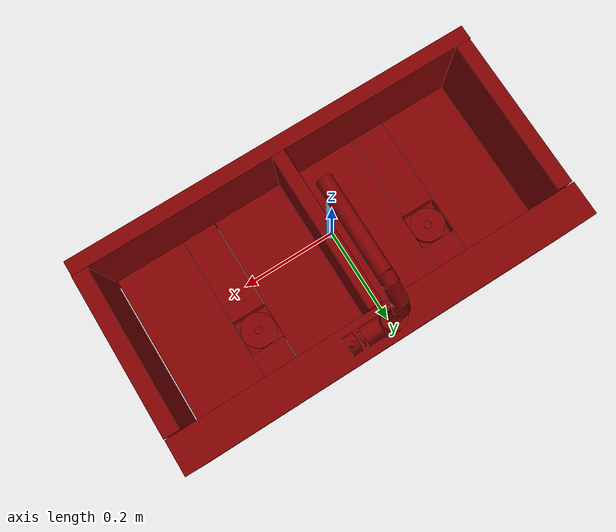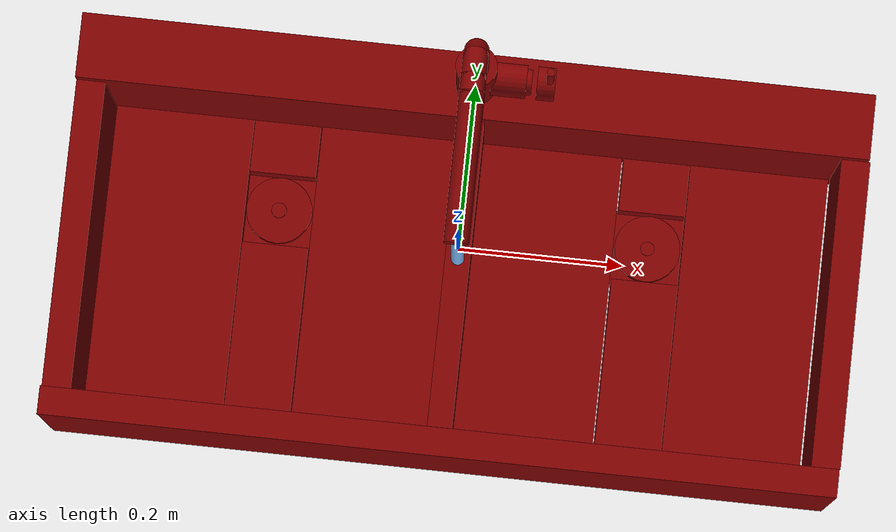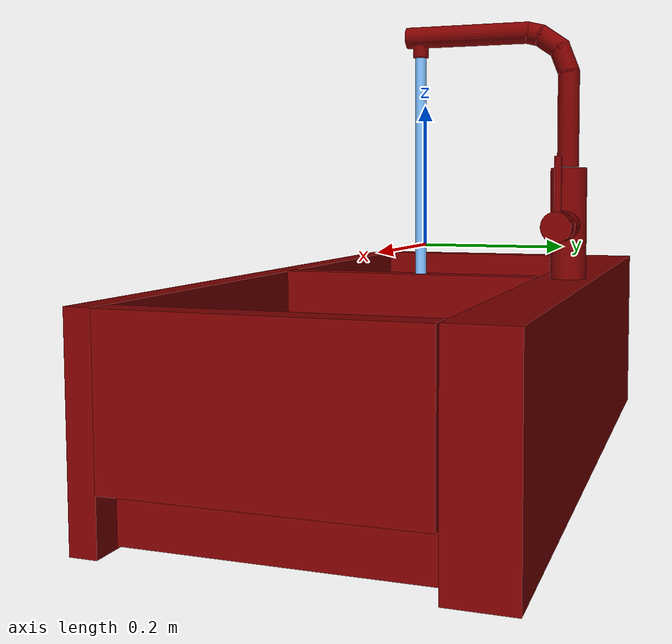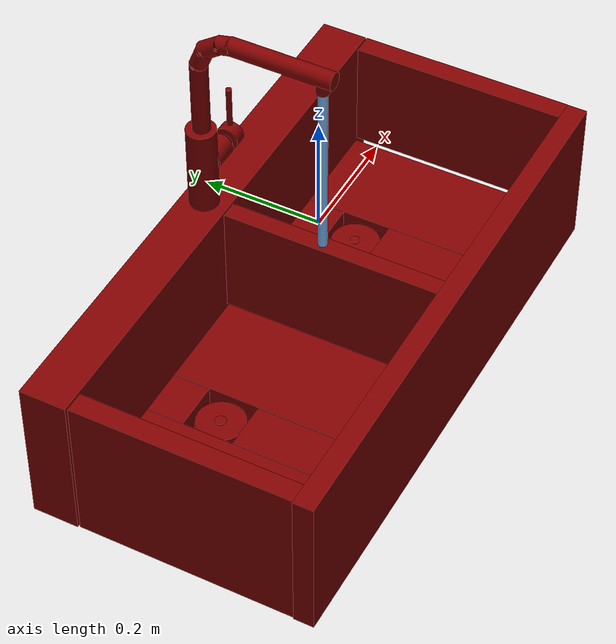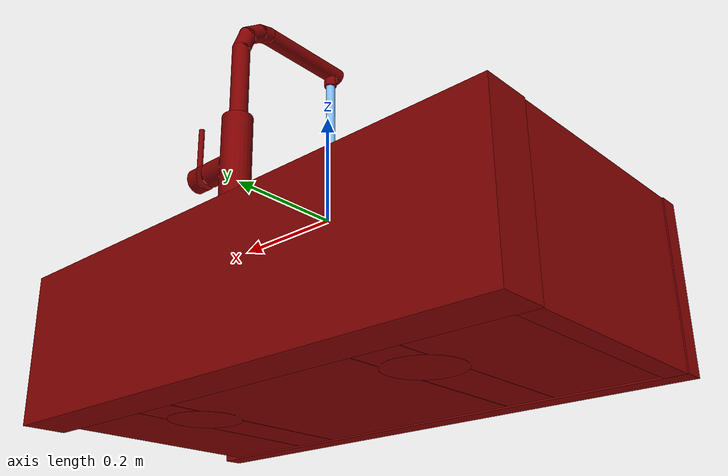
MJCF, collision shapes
<mujoco model="model">
  <compiler angle="radian"/>
  <asset>
    <mesh file="visuals/handle.obj" name="handle_vis"/>
    <mesh file="visuals/Body001.obj" name="Body001_vis"/>
    <mesh file="visuals/Funnel001.obj" name="Funnel001_vis"/>
    <mesh file="visuals/Funnel002.obj" name="Funnel002_vis"/>
    <mesh file="visuals/spout.obj" name="spout_vis"/>
    <texture file="visuals/T_BC001.png" name="Body001_material" type="2d"/>
    <material name="Body001_material" rgba="1 1 1 1.0" texture="Body001_material" shininess="0.4472135901451111" specular="0.3103448502657381"/>
    <texture file="visuals/T_BC001.png" name="handle_material" type="2d"/>
    <material name="handle_material" rgba="1 1 1 1.0" texture="handle_material" shininess="0.4472135901451111" specular="0.3103448502657381"/>
    <texture file="visuals/T_BC001.png" name="Funnel001_material" type="2d"/>
    <material name="Funnel001_material" rgba="1 1 1 1.0" texture="Funnel001_material" shininess="0.4472135901451111" specular="0.3103448502657381"/>
    <texture file="visuals/T_BC001.png" name="Funnel002_material" type="2d"/>
    <material name="Funnel002_material" rgba="1 1 1 1.0" texture="Funnel002_material" shininess="0.4472135901451111" specular="0.3103448502657381"/>
    <texture file="visuals/T_BC001.png" name="spout_material" type="2d"/>
    <material name="spout_material" rgba="1 1 1 1.0" texture="spout_material" shininess="0.4472135901451111" specular="0.3103448502657381"/>
  </asset>
  <default>
    <default class="visual">
      <geom conaffinity="0" contype="0" group="1" type="mesh"/>
    </default>
    <default class="collision">
      <geom group="0" rgba="0.5 0 0 0.5"/>
    </default>
    <default class="spawn">
      <geom group="0" rgba="1 1 1 0.5" contype="0" conaffinity="0"/>
      <site group="0" rgba="1 1 1 0.5"/>
    </default>
    <default class="region">
      <geom group="1" conaffinity="0" contype="0" rgba="0 1 0 0"/>
    </default>
  </default>
  <worldbody>
    <body>
      <body name="object">
        <geom mesh="Body001_vis" type="mesh" solimp="0.998 0.998 0.001" solref="0.001 1" density="100" friction="0.95 0.3 0.1" class="visual" material="Body001_material"/>
        <geom class="collision" type="box" pos="-0.4688240885734558 -0.025442225858569145 -0.17972242832183838" size="0.017692016437649727 0.18879583477973938 0.13597573339939117" quat="1.0 0.0 0.0 0.0"/>
        <geom class="collision" type="box" pos="-0.0005250170361250639 -0.025442225858569145 -0.14310631155967712" size="0.015185253694653511 0.1887967437505722 0.10022661834955215" quat="1.0 0.0 0.0 0.0"/>
        <geom class="collision" type="box" pos="0.47088247537612915 -0.025442225858569145 -0.14448444545269012" size="0.017809739336371422 0.18879598379135132 0.1001676395535469" quat="1.0 0.0 0.0 0.0"/>
        <geom class="collision" type="box" pos="-0.00048047304153442383 0.20637015998363495 -0.17972242832183838" size="0.4881691336631775 0.04013274610042572 0.1359759122133255" quat="1.0 0.0 0.0 0.0"/>
        <geom class="collision" type="box" pos="-0.00048047304153442383 -0.231595978140831 -0.17972242832183838" size="0.48816943168640137 0.017473556101322174 0.13597597181797028" quat="1.0 0.0 0.0 0.0"/>
        <geom class="collision" type="box" pos="0.00044145656283944845 -0.025442227721214294 -0.28166231513023376" size="0.18996965885162354 0.18879622220993042 0.031054990366101265" quat="1.0 0.0 0.0 0.0"/>
        <geom class="collision" type="box" pos="0.36437296867370605 -0.025442227721214294 -0.28166231513023376" size="0.0871833935379982 0.1887962967157364 0.031054990366101265" quat="1.0 0.0 0.0 0.0"/>
        <geom class="collision" type="box" pos="-0.3629124164581299 -0.025442227721214294 -0.28166231513023376" size="0.08718343079090118 0.18879637122154236 0.031054990366101265" quat="1.0 0.0 0.0 0.0"/>
        <geom class="collision" type="box" pos="-0.23297733068466187 -0.10285942256450653 -0.28166231513023376" size="0.041802000254392624 0.11137925088405609 0.031054990366101265" quat="1.0 0.0 0.0 0.0"/>
        <geom class="collision" type="box" pos="-0.23297733068466187 0.13056351244449615 -0.28166231513023376" size="0.041802018880844116 0.03260359913110733 0.031054990366101265" quat="1.0 0.0 0.0 0.0"/>
        <geom class="collision" type="box" pos="0.23444999754428864 0.13022543489933014 -0.28166231513023376" size="0.04180203750729561 0.032941680401563644 0.031054990366101265" quat="1.0 0.0 0.0 0.0"/>
        <geom class="collision" type="box" pos="0.23445001244544983 -0.10195980966091156 -0.28166231513023376" size="0.0418020561337471 0.11227908730506897 0.031054990366101265" quat="1.0 0.0 0.0 0.0"/>
        <geom class="collision" type="cylinder" pos="-0.2331215888261795 0.053658485412597656 -0.30161380767822266" size="0.0638626217842102 0.011342408135533333" quat="1.0 0.0 0.0 0.0"/>
        <geom class="collision" type="cylinder" pos="0.2341102659702301 0.053658485412597656 -0.3017972707748413" size="0.0638626217842102 0.011158940382301807" quat="1.0 0.0 0.0 0.0"/>
        <geom class="collision" type="cylinder" pos="-0.00014972896315157413 0.20837345719337463 0.03174792602658272" size="0.025186479091644287 0.07796847820281982" quat="1.0 0.0 0.0 0.0"/>
        <geom class="collision" type="cylinder" pos="0.03975735604763031 0.20696187019348145 0.030607126653194427" size="0.020408621057868004 0.02134617045521736" quat="1.3767878215276141e-07 0.7071068286895752 -1.3767875373105198e-07 0.7071067094802856"/>
        <geom class="collision" type="cylinder" pos="0.05941198393702507 0.20696187019348145 0.030607126653194427" size="0.01566932164132595 0.007974190637469292" quat="1.3767878215276141e-07 0.7071068286895752 -1.3767875373105198e-07 0.7071067094802856"/>
        <body name="handle">
          <joint axis="1.0 0.0 0.0" pos="0.0819985568523407 0.20718786120414734 0.030960608273744583" limited="true" name="handle_joint_hinge_0" type="hinge" range="-0.7853981633974483 0.7853981633974483" damping="1" frictionloss="1" armature=".01" stiffness="0.05"/>
          <joint axis="0.0 1.0 0.0" pos="0.0819985568523407 0.20718786120414734 0.030960608273744583" limited="true" name="handle_joint_hinge_1" type="hinge" range="0.0 0.17453292519943295" damping="1" frictionloss="1" armature=".01" stiffness="0.05"/>
          <geom mesh="handle_vis" type="mesh" solimp="0.998 0.998 0.001" solref="0.001 1" density="100" friction="0.95 0.3 0.1" class="visual" material="handle_material"/>
          <geom class="collision" type="cylinder" pos="0.08489503711462021 0.20696187019348145 0.030607124790549278" size="0.020408619195222855 0.010828463360667229" quat="1.3767878215276141e-07 0.7071068286895752 -1.3767875373105198e-07 0.7071067094802856"/>
          <geom class="collision" type="cylinder" pos="0.08910184353590012 0.20837345719337463 0.08650544285774231" size="0.004830267746001482 0.036618586629629135" quat="7.549790836947068e-08 1.0 -1.6292068494294654e-07 7.549789415861596e-08"/>
        </body>
        <body name="Funnel001">
          <joint axis="0.0 0.0 1.0" pos="-0.23377270996570587 0.05327993631362915 -0.2681823968887329" limited="true" name="Funnel001_joint" range="0.0 0.08" type="slide" damping="1" frictionloss="1" armature=".01" stiffness="0.05"/>
          <geom mesh="Funnel001_vis" type="mesh" solimp="0.998 0.998 0.001" solref="0.001 1" density="100" friction="0.95 0.3 0.1" class="visual" material="Funnel001_material"/>
          <geom class="collision" type="cylinder" pos="-0.2331215888261795 0.053658485412597656 -0.2684289216995239" size="0.04160851240158081 0.005387522745877504" quat="1.0 0.0 0.0 0.0"/>
          <geom class="collision" type="cylinder" pos="-0.2331215888261795 0.053658485412597656 -0.2624143958091736" size="0.009606130421161652 0.001243814011104405" quat="1.0 0.0 0.0 0.0"/>
        </body>
        <body name="Funnel002">
          <joint axis="0.0 0.0 1.0" pos="0.23377270996570587 0.05328001827001572 -0.2681823968887329" limited="true" name="Funnel002_joint" range="0.0 0.08" type="slide" damping="1" frictionloss="1" armature=".01" stiffness="0.05"/>
          <geom mesh="Funnel002_vis" type="mesh" solimp="0.998 0.998 0.001" solref="0.001 1" density="100" friction="0.95 0.3 0.1" class="visual" material="Funnel002_material"/>
          <geom class="collision" type="cylinder" pos="0.23389877378940582 0.053658485412597656 -0.2684289216995239" size="0.04160851240158081 0.005387522745877504" quat="1.0 0.0 0.0 0.0"/>
          <geom class="collision" type="cylinder" pos="0.23389877378940582 0.053658485412597656 -0.2632989287376404" size="0.008709521032869816 0.0027029607445001602" quat="1.0 0.0 0.0 0.0"/>
        </body>
        <body name="spout">
          <joint axis="0.0 0.0 1.0" pos="-0.00010259231203235686 0.2080770581960678 0.18622417747974396" limited="true" name="spout_joint" range="-0.7853981633974483 0.7853981633974483" type="hinge" damping="1" frictionloss="1" armature=".01" stiffness="0.05"/>
          <site type="cylinder" rgba="0.5 0.75 1 1" size="0.008077822625637054 0.25433674454689026" pos="-0.00022850713867228478 -0.006902423687279224 0.014040738344192505" name="water"/>
          <geom mesh="spout_vis" type="mesh" solimp="0.998 0.998 0.001" solref="0.001 1" density="100" friction="0.95 0.3 0.1" class="visual" material="spout_material"/>
          <geom class="collision" type="cylinder" pos="-0.00022850713867228478 0.2069898098707199 0.17759908735752106" size="0.014976673759520054 0.06626234948635101" quat="1.0 0.0 0.0 0.0"/>
          <geom class="collision" type="cylinder" pos="4.6260698582045734e-05 0.06275240331888199 0.2975461781024933" size="0.014976673759520054 0.08919991552829742" quat="0.7071068286895752 0.7071067690849304 -1.5700924318127872e-16 -5.9269340452702814e-24"/>
          <geom class="collision" type="cylinder" pos="-0.00022851070389151573 0.2002333104610443 0.25821176171302795" size="0.014976675622165203 0.020353922620415688" quat="0.982413113117218 0.1867203712463379 -4.146025768229317e-17 1.6905972352430204e-23"/>
          <geom class="collision" type="cylinder" pos="-0.00022850713867228478 -0.006902423687279224 0.27870461344718933" size="0.010961321182549 0.009372392669320107" quat="7.549790126404332e-08 1.0 -2.220446049250313e-16 -1.7645063234279917e-24"/>
          <geom class="collision" type="cylinder" pos="-0.00022851070389151573 0.18160898983478546 0.28285831212997437" size="0.014976675622165203 0.020353922620415688" quat="0.8874186277389526 0.4609643816947937 -1.023546738702665e-16 6.925955778681676e-24"/>
          <geom class="collision" type="cylinder" pos="-0.00022851070389151573 0.15852375328540802 0.2951258420944214" size="0.014976675622165203 0.012227360159158707" quat="0.7861025929450989 0.6180960536003113 -1.372449072622919e-16 2.2254117968248472e-23"/>
        </body>
        <geom class="region" name="reg_main" type="box" pos="3.725290298461914e-08 -7.450580596923828e-08 -0.17865458130836487" size="0.48679661750793457 0.24702522158622742 0.13331298530101776"/>
        <geom class="region" name="reg_basin_left" type="box" pos="-0.23525888845324516 -0.0255730003118515 -0.15019121579825878" size="0.21397064998745918 0.18765230476856232 0.10056075640022755"/>
        <geom class="region" name="reg_basin_right" type="box" pos="0.23353380430489779 -0.025940850377082825 -0.14828085713088512" size="0.21497985254973173 0.18821710348129272 0.09865039773285389"/>
      </body>
    </body>
  </worldbody>
  <actuator>
    <motor name="handle_joint_hinge_0_actuator" joint="handle_joint_hinge_0" gear="10"/>
    <motor name="handle_joint_hinge_1_actuator" joint="handle_joint_hinge_1" gear="10"/>
    <motor name="Funnel001_joint_actuator" joint="Funnel001_joint" gear="10"/>
    <motor name="Funnel002_joint_actuator" joint="Funnel002_joint" gear="10"/>
    <motor name="spout_joint_actuator" joint="spout_joint" gear="10"/>
  </actuator>
</mujoco>
